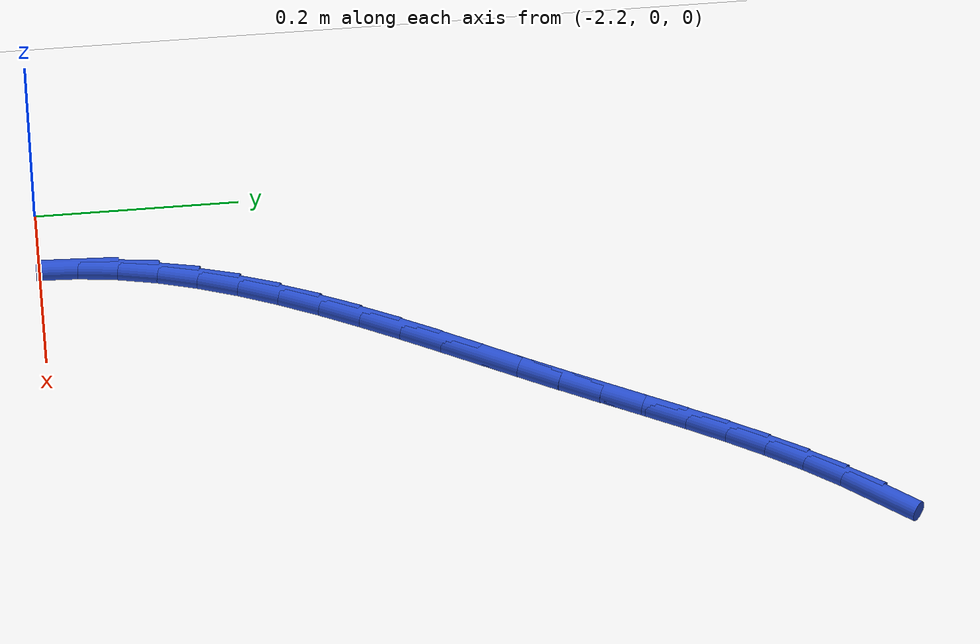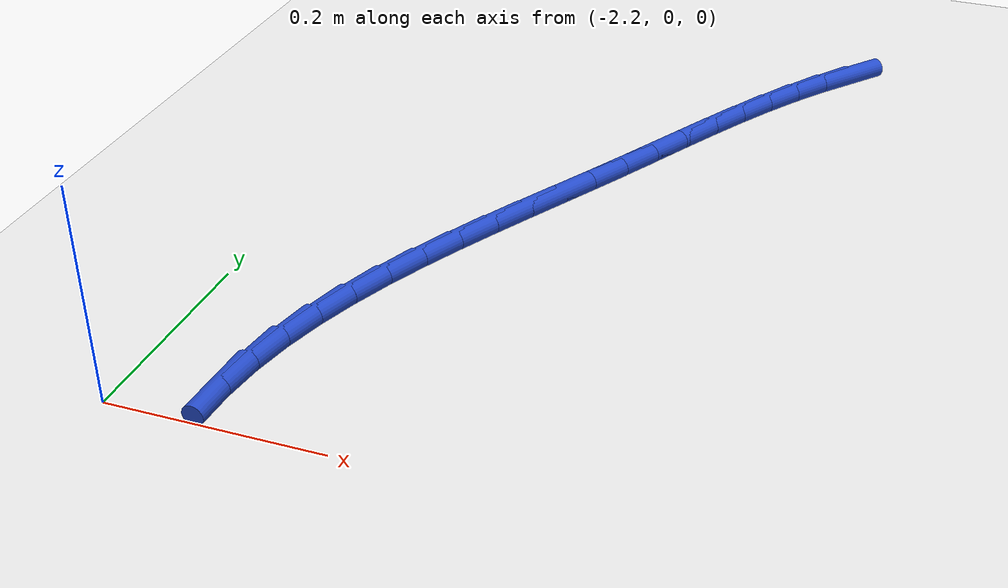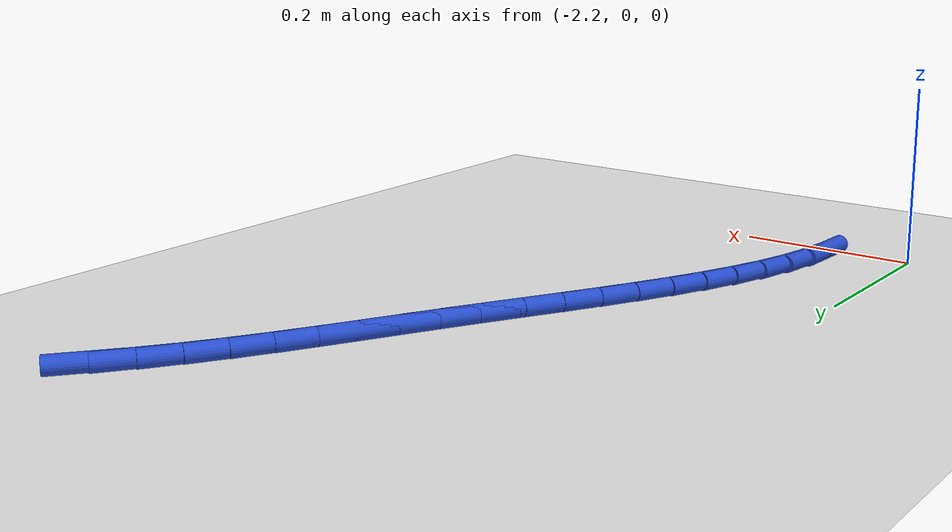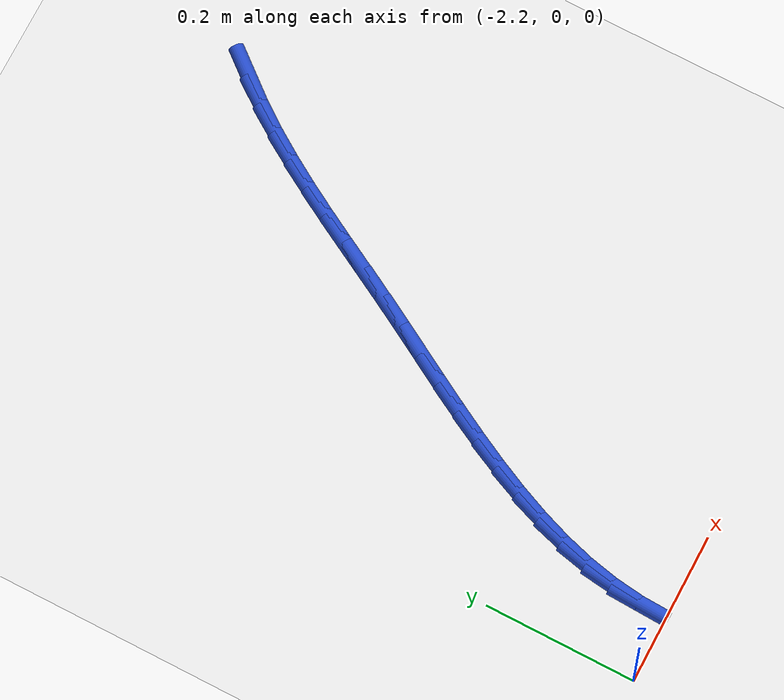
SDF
<sdf version="1.6">
 <world name="default">
  <model name="ground_plane">
   <static>1</static>
   <link name="link">
    <collision name="collision">
     <geometry><plane><normal>0 0 1</normal><size>100 100</size></plane></geometry>
     <surface><friction><ode><mu>100</mu><mu2>50</mu2></ode></friction></surface>
    </collision>
    <visual name="visual">
     <cast_shadows>0</cast_shadows>
     <geometry><plane><normal>0 0 1</normal><size>100 100</size></plane></geometry>
     <material>
      <script><uri>file://media/materials/scripts/gazebo.material</uri><name>Gazebo/WhiteGlow</name></script>
     </material>
    </visual>
   </link>
  </model>
  <model name="line">
   <link name="link_59">
    <pose>-1.7408769503276151 0.7720114651922916 0.01 0 1.57 0.8824137669769075</pose>
    <collision name="collision">
     <geometry><cylinder><radius>0.01</radius><length>0.08</length></cylinder></geometry>
    </collision>
    <visual name="visual">
     <material>
      <script><name>Gazebo/Blue</name><uri>file://media/materials/scripts/gazebo.material</uri></script>
     </material>
     <geometry><cylinder><radius>0.01</radius><length>0.08</length></cylinder></geometry>
    </visual>
   </link>
   <link name="link_60">
    <pose>-1.76676539973835 0.74054075814405 0.01 0 1.57 0.9378704573168014</pose>
    <collision name="collision">
     <geometry><cylinder><radius>0.01</radius><length>0.08</length></cylinder></geometry>
    </collision>
    <visual name="visual">
     <material>
      <script><name>Gazebo/Blue</name><uri>file://media/materials/scripts/gazebo.material</uri></script>
     </material>
     <geometry><cylinder><radius>0.01</radius><length>0.08</length></cylinder></geometry>
    </visual>
   </link>
   <link name="link_61">
    <pose>-1.790888480675045 0.7076578566755316 0.01 0 1.57 0.9838079836002007</pose>
    <collision name="collision">
     <geometry><cylinder><radius>0.01</radius><length>0.08</length></cylinder></geometry>
    </collision>
    <visual name="visual">
     <material>
      <script><name>Gazebo/Blue</name><uri>file://media/materials/scripts/gazebo.material</uri></script>
     </material>
     <geometry><cylinder><radius>0.01</radius><length>0.08</length></cylinder></geometry>
    </visual>
   </link>
   <link name="link_62">
    <pose>-1.813571649776204 0.673558217490909 0.01 0 1.57 1.0200538556029488</pose>
    <collision name="collision">
     <geometry><cylinder><radius>0.01</radius><length>0.08</length></cylinder></geometry>
    </collision>
    <visual name="visual">
     <material>
      <script><name>Gazebo/Blue</name><uri>file://media/materials/scripts/gazebo.material</uri></script>
     </material>
     <geometry><cylinder><radius>0.01</radius><length>0.08</length></cylinder></geometry>
    </visual>
   </link>
   <link name="link_63">
    <pose>-1.835140363680332 0.6384372972943543 0.01 0 1.57 1.0466583227039368</pose>
    <collision name="collision">
     <geometry><cylinder><radius>0.01</radius><length>0.08</length></cylinder></geometry>
    </collision>
    <visual name="visual">
     <material>
      <script><name>Gazebo/Blue</name><uri>file://media/materials/scripts/gazebo.material</uri></script>
     </material>
     <geometry><cylinder><radius>0.01</radius><length>0.08</length></cylinder></geometry>
    </visual>
   </link>
   <link name="link_64">
    <pose>-1.8559200790259354 0.6024905527900405 0.01 0 1.57 1.0637906776533215</pose>
    <collision name="collision">
     <geometry><cylinder><radius>0.01</radius><length>0.08</length></cylinder></geometry>
    </collision>
    <visual name="visual">
     <material>
      <script><name>Gazebo/Blue</name><uri>file://media/materials/scripts/gazebo.material</uri></script>
     </material>
     <geometry><cylinder><radius>0.01</radius><length>0.08</length></cylinder></geometry>
    </visual>
   </link>
   <link name="link_65">
    <pose>-1.8762362524515184 0.5659134406821397 0.01 0 1.57 1.0716638578407824</pose>
    <collision name="collision">
     <geometry><cylinder><radius>0.01</radius><length>0.08</length></cylinder></geometry>
    </collision>
    <visual name="visual">
     <material>
      <script><name>Gazebo/Blue</name><uri>file://media/materials/scripts/gazebo.material</uri></script>
     </material>
     <geometry><cylinder><radius>0.01</radius><length>0.08</length></cylinder></geometry>
    </visual>
   </link>
   <link name="link_66">
    <pose>-1.8964143405955864 0.5289014176748237 0.01 0 1.57 1.0704886454675888</pose>
    <collision name="collision">
     <geometry><cylinder><radius>0.01</radius><length>0.08</length></cylinder></geometry>
    </collision>
    <visual name="visual">
     <material>
      <script><name>Gazebo/Blue</name><uri>file://media/materials/scripts/gazebo.material</uri></script>
     </material>
     <geometry><cylinder><radius>0.01</radius><length>0.08</length></cylinder></geometry>
    </visual>
   </link>
   <link name="link_67">
    <pose>-1.916779800096645 0.4916499404722658 0.01 0 1.57 1.06092664789406</pose>
    <collision name="collision">
     <geometry><cylinder><radius>0.01</radius><length>0.08</length></cylinder></geometry>
    </collision>
    <visual name="visual">
     <material>
      <script><name>Gazebo/Blue</name><uri>file://media/materials/scripts/gazebo.material</uri></script>
     </material>
     <geometry><cylinder><radius>0.01</radius><length>0.08</length></cylinder></geometry>
    </visual>
   </link>
   <link name="link_68">
    <pose>-1.9376385767630275 0.4543480126797631 0.01 0 1.57 1.0517392426218832</pose>
    <collision name="collision">
     <geometry><cylinder><radius>0.01</radius><length>0.08</length></cylinder></geometry>
    </collision>
    <visual name="visual">
     <material>
      <script><name>Gazebo/Blue</name><uri>file://media/materials/scripts/gazebo.material</uri></script>
     </material>
     <geometry><cylinder><radius>0.01</radius><length>0.08</length></cylinder></geometry>
    </visual>
   </link>
   <link name="link_69">
    <pose>-1.9589381391680638 0.4170660735452046 0.01 0 1.57 1.0504066511306098</pose>
    <collision name="collision">
     <geometry><cylinder><radius>0.01</radius><length>0.08</length></cylinder></geometry>
    </collision>
    <visual name="visual">
     <material>
      <script><name>Gazebo/Blue</name><uri>file://media/materials/scripts/gazebo.material</uri></script>
     </material>
     <geometry><cylinder><radius>0.01</radius><length>0.08</length></cylinder></geometry>
    </visual>
   </link>
   <link name="link_70">
    <pose>-1.9803114409524911 0.37977053824678153 0.01 0 1.57 1.05714541838875</pose>
    <collision name="collision">
     <geometry><cylinder><radius>0.01</radius><length>0.08</length></cylinder></geometry>
    </collision>
    <visual name="visual">
     <material>
      <script><name>Gazebo/Blue</name><uri>file://media/materials/scripts/gazebo.material</uri></script>
     </material>
     <geometry><cylinder><radius>0.01</radius><length>0.08</length></cylinder></geometry>
    </visual>
   </link>
   <link name="link_71">
    <pose>-2.001380764594178 0.342424292534748 0.01 0 1.57 1.0720871526071907</pose>
    <collision name="collision">
     <geometry><cylinder><radius>0.01</radius><length>0.08</length></cylinder></geometry>
    </collision>
    <visual name="visual">
     <material>
      <script><name>Gazebo/Blue</name><uri>file://media/materials/scripts/gazebo.material</uri></script>
     </material>
     <geometry><cylinder><radius>0.01</radius><length>0.08</length></cylinder></geometry>
    </visual>
   </link>
   <link name="link_72">
    <pose>-2.021768392570992 0.3049902221593582 0.01 0 1.57 1.0955297165146125</pose>
    <collision name="collision">
     <geometry><cylinder><radius>0.01</radius><length>0.08</length></cylinder></geometry>
    </collision>
    <visual name="visual">
     <material>
      <script><name>Gazebo/Blue</name><uri>file://media/materials/scripts/gazebo.material</uri></script>
     </material>
     <geometry><cylinder><radius>0.01</radius><length>0.08</length></cylinder></geometry>
    </visual>
   </link>
   <link name="link_73">
    <pose>-2.0410966073608003 0.26743121287086524 0.01 0 1.57 1.1279196252805543</pose>
    <collision name="collision">
     <geometry><cylinder><radius>0.01</radius><length>0.08</length></cylinder></geometry>
    </collision>
    <visual name="visual">
     <material>
      <script><name>Gazebo/Blue</name><uri>file://media/materials/scripts/gazebo.material</uri></script>
     </material>
     <geometry><cylinder><radius>0.01</radius><length>0.08</length></cylinder></geometry>
    </visual>
   </link>
   <link name="link_74">
    <pose>-2.05898769144147 0.2297101504195236 0.01 0 1.57 1.1698163942049855</pose>
    <collision name="collision">
     <geometry><cylinder><radius>0.01</radius><length>0.08</length></cylinder></geometry>
    </collision>
    <visual name="visual">
     <material>
      <script><name>Gazebo/Blue</name><uri>file://media/materials/scripts/gazebo.material</uri></script>
     </material>
     <geometry><cylinder><radius>0.01</radius><length>0.08</length></cylinder></geometry>
    </visual>
   </link>
   <link name="link_75">
    <pose>-2.0750639272908704 0.19178992055558672 0.01 0 1.57 1.221826851463844</pose>
    <collision name="collision">
     <geometry><cylinder><radius>0.01</radius><length>0.08</length></cylinder></geometry>
    </collision>
    <visual name="visual">
     <material>
      <script><name>Gazebo/Blue</name><uri>file://media/materials/scripts/gazebo.material</uri></script>
     </material>
     <geometry><cylinder><radius>0.01</radius><length>0.08</length></cylinder></geometry>
    </visual>
   </link>
   <link name="link_76">
    <pose>-2.0889475973868685 0.1536334090293082 0.01 0 1.57 1.2844940822434423</pose>
    <collision name="collision">
     <geometry><cylinder><radius>0.01</radius><length>0.08</length></cylinder></geometry>
    </collision>
    <visual name="visual">
     <material>
      <script><name>Gazebo/Blue</name><uri>file://media/materials/scripts/gazebo.material</uri></script>
     </material>
     <geometry><cylinder><radius>0.01</radius><length>0.08</length></cylinder></geometry>
    </visual>
   </link>
   <link name="link_77">
    <pose>-2.1002609842073316 0.11520350159094228 0.01 0 1.57 1.3581272919895013</pose>
    <collision name="collision">
     <geometry><cylinder><radius>0.01</radius><length>0.08</length></cylinder></geometry>
    </collision>
    <visual name="visual">
     <material>
      <script><name>Gazebo/Blue</name><uri>file://media/materials/scripts/gazebo.material</uri></script>
     </material>
     <geometry><cylinder><radius>0.01</radius><length>0.08</length></cylinder></geometry>
    </visual>
   </link>
   <link name="link_78">
    <pose>-2.108626370230128 0.07646308399074223 0.01 0 1.57 1.4419773215086646</pose>
    <collision name="collision">
     <geometry><cylinder><radius>0.01</radius><length>0.08</length></cylinder></geometry>
    </collision>
    <visual name="visual">
     <material>
      <script><name>Gazebo/Blue</name><uri>file://media/materials/scripts/gazebo.material</uri></script>
     </material>
     <geometry><cylinder><radius>0.01</radius><length>0.08</length></cylinder></geometry>
    </visual>
   </link>
   <link name="link_79">
    <pose>-2.113689323164126 0.03737788500122309 0.01 0 1.57 1.526290605137046</pose>
    <collision name="collision">
     <geometry><cylinder><radius>0.01</radius><length>0.08</length></cylinder></geometry>
    </collision>
    <visual name="visual">
     <material>
      <script><name>Gazebo/Blue</name><uri>file://media/materials/scripts/gazebo.material</uri></script>
     </material>
     <geometry><cylinder><radius>0.01</radius><length>0.08</length></cylinder></geometry>
    </visual>
   </link>
  </model>
 </world>
</sdf>
